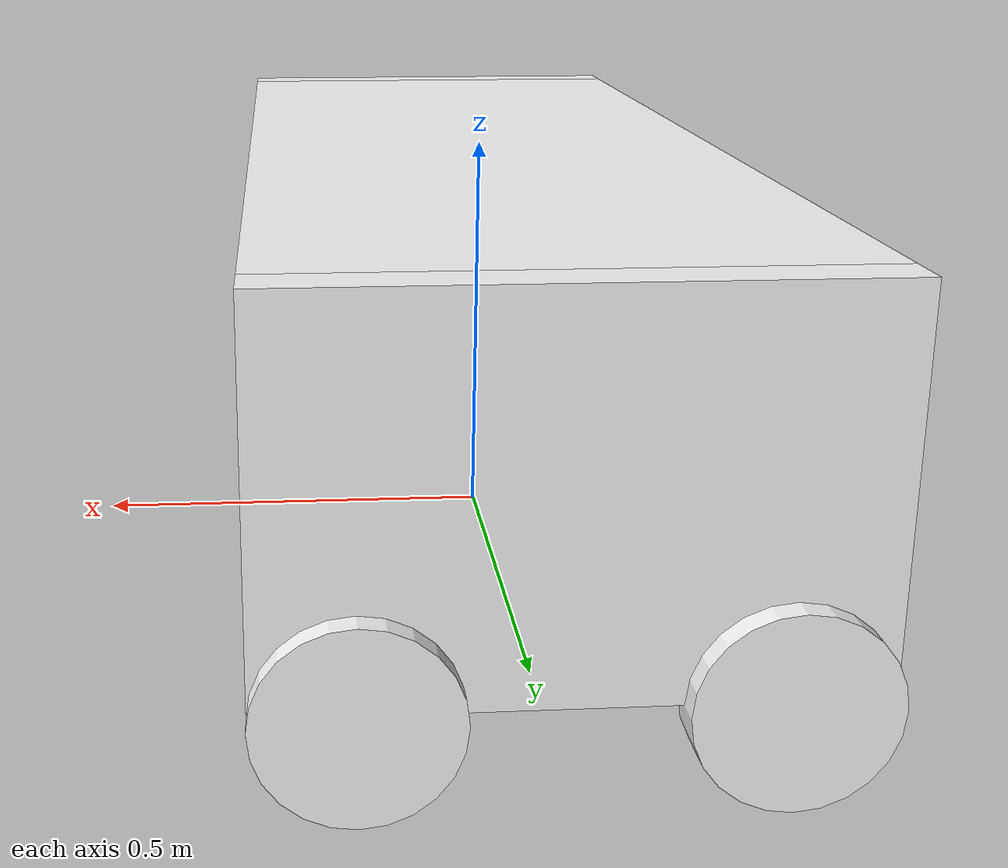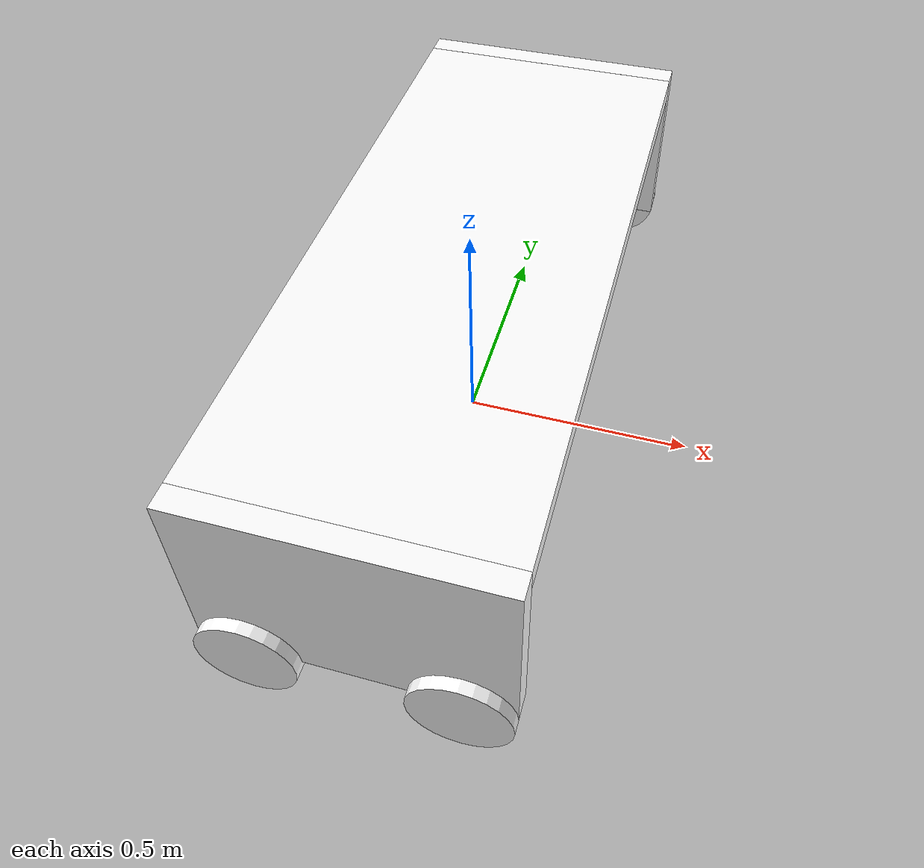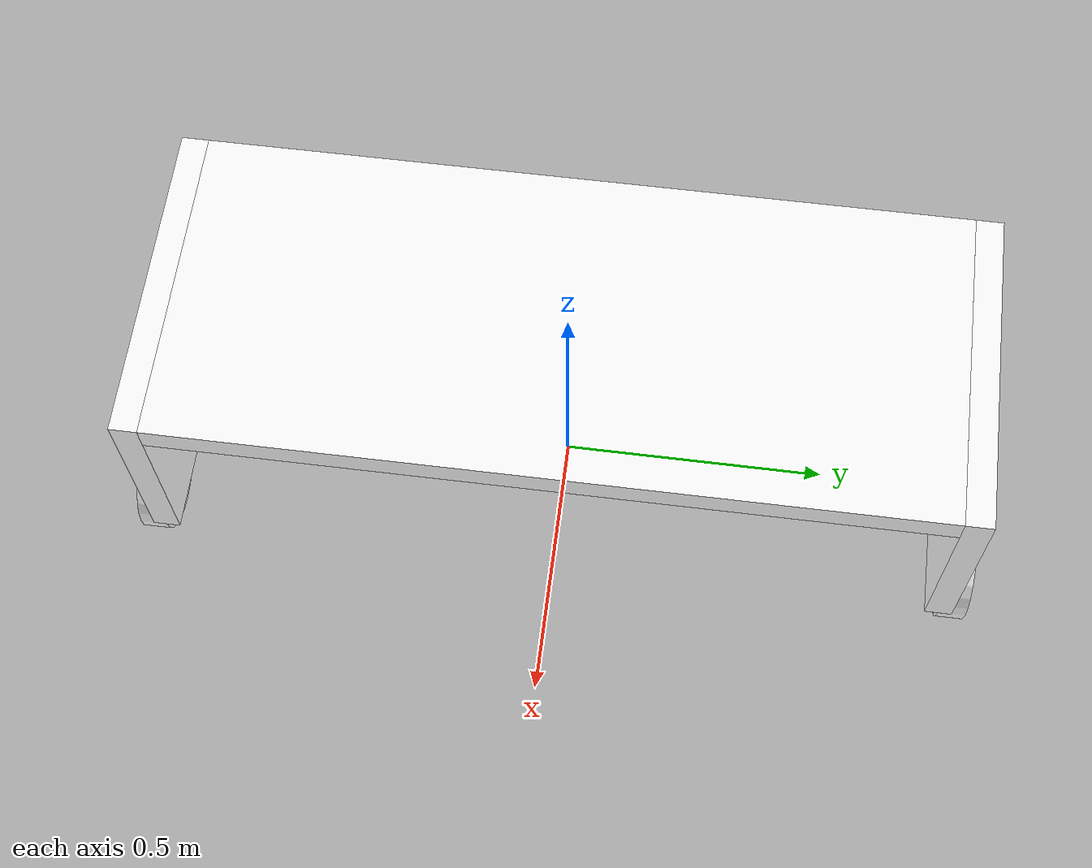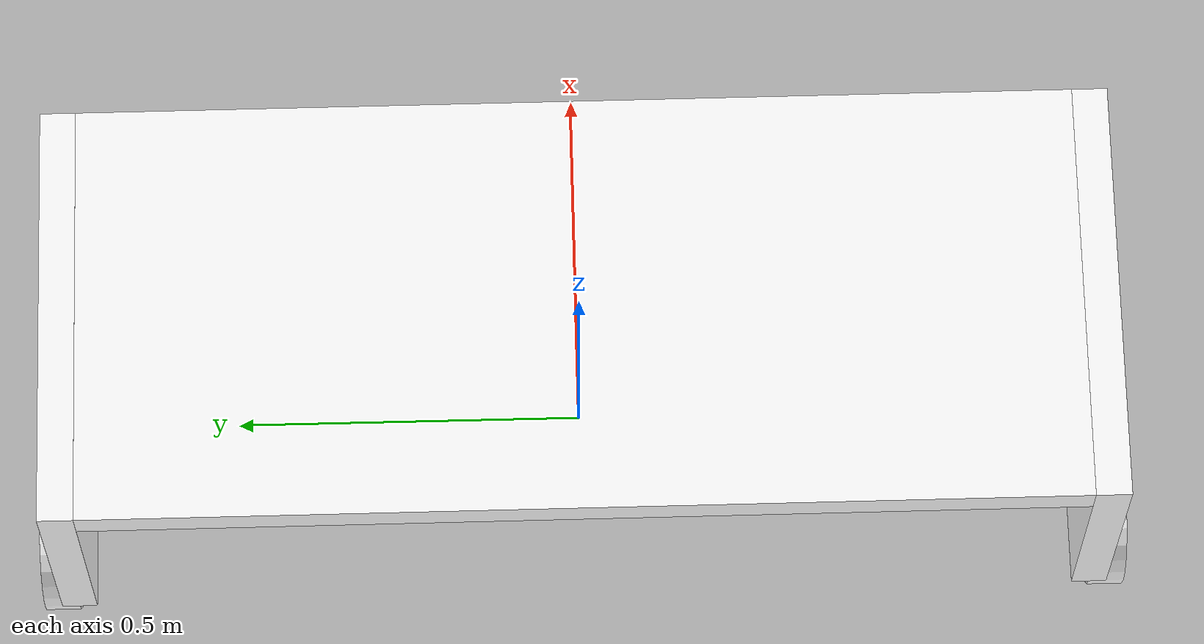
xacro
<?xml version="1.0"?>
<robot xmlns:xacro="http://www.ros.org/wiki/xacro" name="dummy">

    <xacro:include filename="gazebo.xacro"/>

    <material name="white">
        <color rgba="1 1 1 1"/>
    </material>

    <link name="dummy"/>

    <joint type="fixed" name="dummy">
        <parent link="dummy"/>
        <child link="body1"/>
    </joint>

    <link name="body1">
        <visual>
            <geometry>
                <box size="0.6 1.4 0.05"/>
            </geometry>
            <material name="white"/>
            <origin rpy="0 0 0" xyz="0 0 0.475"/>
        </visual>
        <collision>
            <geometry>
                <box size="0.6 1.4 0.05"/>
            </geometry>
            <origin rpy="0 0 0" xyz="0 0 0.475"/>
        </collision>
        <xacro:inertial_box mass="10.5" x="0.6" y="1.4" z="0.05">
            <origin xyz="0 0 0.475" rpy="0 0 0"/>
        </xacro:inertial_box>
    </link>

    <link name="body2">
        <visual>
            <geometry>
                <box size="0.6 0.4 0.05"/>
            </geometry>
            <material name="white"/>
            <origin rpy="0 0 0" xyz="0 0 0"/>
        </visual>
        <collision>
            <geometry>
                <box size="0.6 0.4 0.05"/>
            </geometry>
            <origin rpy="0 0 0" xyz="0 0 0"/>
        </collision>
        <xacro:inertial_box mass="5.5" x="0.6" y="0.4" z="0.05">
            <origin xyz="0 0 0" rpy="0 0 0"/>
        </xacro:inertial_box>
    </link>

    <joint type="fixed" name="body1_2">
        <parent link="body1"/>
        <child link="body2"/>
        <origin xyz="0 0.725 0.3" rpy="1.5707 0 0"/>
    </joint>

    <link name="body3">
        <visual>
            <geometry>
                <box size="0.6 0.4 0.05"/>
            </geometry>
            <material name="white"/>
            <origin rpy="0 0 0" xyz="0 0 0"/>
        </visual>
        <collision>
            <geometry>
                <box size="0.6 0.4 0.05"/>
            </geometry>
            <origin rpy="0 0 0" xyz="0 0 0"/>
        </collision>
        <xacro:inertial_box mass="5.5" x="0.6" y="0.4" z="0.05">
            <origin xyz="0 0 0" rpy="0 0 0"/>
        </xacro:inertial_box>
    </link>

    <joint type="fixed" name="body1_3">
        <parent link="body1"/>
        <child link="body3"/>
        <origin xyz="0 -0.725 0.3" rpy="1.5707 0 0"/>
    </joint>

    <link name="left_wheel_f">
        <visual>
            <geometry>
                <cylinder length="0.05" radius="0.1"/>
            </geometry>
            <material name="white"/>
            <origin xyz="0 0 0" rpy="0 0 0"/>
        </visual>
        <collision>
            <geometry>
                <cylinder length="0.05" radius="0.1"/>
            </geometry>
            <origin xyz="0 0 0" rpy="0 0 0"/>
        </collision>
        <xacro:inertial_cylinder mass="5.5" length="0.05" radius="0.1">
            <origin xyz="0 0 0" rpy="0 0 0"/>
        </xacro:inertial_cylinder>
    </link>

    <link name="right_wheel_f">
        <visual>
            <geometry>
                <cylinder length="0.05" radius="0.1"/>
            </geometry>
            <material name="white"/>
            <origin xyz="0 0 0" rpy="0 0 0"/>
        </visual>
        <collision>
            <geometry>
                <cylinder length="0.05" radius="0.1"/>
            </geometry>
            <origin xyz="0 0 0" rpy="0 0 0"/>
        </collision>
        <xacro:inertial_cylinder mass="5.5" length="0.05" radius="0.1">
            <origin xyz="0 0 0" rpy="0 0 0"/>
        </xacro:inertial_cylinder>
    </link>

    <link name="left_wheel_b">
        <visual>
            <geometry>
                <cylinder length="0.05" radius="0.1"/>
            </geometry>
            <material name="white"/>
            <origin xyz="0 0 0" rpy="0 0 0"/>
        </visual>
        <collision>
            <geometry>
                <cylinder length="0.05" radius="0.1"/>
            </geometry>
            <origin xyz="0 0 0" rpy="0 0 0"/>
        </collision>
        <xacro:inertial_cylinder mass="5.5" length="0.05" radius="0.1">
            <origin xyz="0 0 0" rpy="0 0 0"/>
        </xacro:inertial_cylinder>
    </link>

    <link name="right_wheel_b">
        <visual>
            <geometry>
                <cylinder length="0.05" radius="0.1"/>
            </geometry>
            <material name="white"/>
            <origin xyz="0 0 0" rpy="0 0 0"/>
        </visual>
        <collision>
            <geometry>
                <cylinder length="0.05" radius="0.1"/>
            </geometry>
            <origin xyz="0 0 0" rpy="0 0 0"/>
        </collision>
        <xacro:inertial_cylinder mass="5.5" length="0.05" radius="0.1">
            <origin xyz="0 0 0" rpy="0 0 0"/>
        </xacro:inertial_cylinder>
    </link>

    <joint type="continuous" name="left_joint_f">
        <axis rpy="0 0 0" xyz="0 0 1"/>
        <limit
            effort="10.0"
            lower="-3.14159265359"
            upper="3.14159265359"
            velocity="10.0"
            />
        <parent link="body2"/>
        <child link="left_wheel_f"/>
        <origin xyz="0.2 -0.2 -0.025" rpy="0 0 0"/>
    </joint>

    <joint type="continuous" name="right_joint_f">
        <axis rpy="0 0 0" xyz="0 0 1"/>
        <limit
            effort="10.0"
            lower="-3.14159265359"
            upper="3.14159265359"
            velocity="10.0"
            />
        <parent link="body3"/>
        <child link="right_wheel_f"/>
        <origin xyz="0.2 -0.2 0.025" rpy="0 3.14159 0"/>
    </joint>

    <joint type="continuous" name="left_joint_b">
        <axis rpy="0 0 0" xyz="0 0 1"/>
        <limit
            effort="10.0"
            lower="-3.14159265359"
            upper="3.14159265359"
            velocity="10.0"
            />
        <parent link="body2"/>
        <child link="left_wheel_b"/>
        <origin xyz="-0.2 -0.2 -0.025" rpy="0 0 0"/>
    </joint>

    <joint type="continuous" name="right_joint_b">
        <axis rpy="0 0 0" xyz="0 0 1"/>
        <limit
            effort="10.0"
            lower="-3.14159265359"
            upper="3.14159265359"
            velocity="10.0"
            />
        <parent link="body3"/>
        <child link="right_wheel_b"/>
        <origin xyz="-0.2 -0.2 0.025" rpy="0 3.14159 0"/>
    </joint>

</robot>

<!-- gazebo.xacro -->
<robot xmlns:xacro="http://www.ros.org/wiki/xacro" name="example">

    <xacro:include filename="inertial_macros.xacro"/>

    <ros2_control name="GazeboSystem" type="system">
        <hardware>
            <plugin>gazebo_ros2_control/GazeboSystem</plugin>
        </hardware>
        <joint name="left_joint_b">
            <command_interface name="velocity"/>
            <state_interface name="position">
                <param name="initial_value">0.0</param>
            </state_interface>
            <state_interface name="velocity"/>
            <state_interface name="effort"/>
        </joint>
        <joint name="right_joint_b">
            <command_interface name="velocity"/>
            <state_interface name="position">
                <param name="initial_value">0.0</param>
            </state_interface>
            <state_interface name="velocity"/>
            <state_interface name="effort"/>
        </joint>
        <joint name="left_joint_f">
            <command_interface name="velocity"/>
            <state_interface name="position">
                <param name="initial_value">0.0</param>
            </state_interface>
            <state_interface name="velocity"/>
            <state_interface name="effort"/>
        </joint>
        <joint name="right_joint_f">
            <command_interface name="velocity"/>
            <state_interface name="position">
                <param name="initial_value">0.0</param>
            </state_interface>
            <state_interface name="velocity"/>
            <state_interface name="effort"/>
        </joint>
    </ros2_control>

    <gazebo>
        <plugin filename="libgazebo_ros2_control.so" name="gazebo_ros2_control">
            <robot_sim_type>gazebo_ros2_control/GazeboSystem</robot_sim_type>
            <parameters>$(find lidar_description)/config/example_controllers.yaml</parameters>
        </plugin>
    </gazebo>

    <gazebo reference="dummy">
        <sensor type="ray" name="lidar_sensor">
            <pose>0 0 0.45 0 1.5707 0</pose>
            <visualize>true</visualize>
            <update_rate>10</update_rate>
            <ray>
                <scan>
                    <horizontal>
                        <sample>720</sample>
                        <resolution>1.125</resolution>
                        <min_angle>0</min_angle>
                        <max_angle>6.28318530718 </max_angle>
                    </horizontal>
                </scan>
                <range>
                    <min>0.05</min>
                    <max>16</max>
                    <resolution>000001</resolution>
                </range>
            </ray>
            <plugin filename="libgazebo_ros_ray_sensor.so" name="lidar">
                <output_type>sensor_msgs/LaserScan</output_type>
            </plugin>
        </sensor>
        <mu1>0.2</mu1>
        <mu2>0.2</mu2>
        <material>Gazebo/Green</material>
    </gazebo>

    <gazebo reference="body1">
        <mu1>0.2</mu1>
        <mu2>0.2</mu2>
        <material>Gazebo/Green</material>
    </gazebo>

    <gazebo reference="body2">
        <mu1>0.2</mu1>
        <mu2>0.2</mu2>
        <material>Gazebo/Green</material>
    </gazebo>

    <gazebo reference="body3">
        <mu1>0.2</mu1>
        <mu2>0.2</mu2>
        <material>Gazebo/Green</material>
    </gazebo>

    <gazebo reference="left_wheel_f">
        <mu1>0.85</mu1>
        <mu2>0.65</mu2>
        <material>Gazebo/Red</material>
    </gazebo>

    <gazebo reference="left_wheel_b">
        <mu1>0.85</mu1>
        <mu2>0.65</mu2>
        <material>Gazebo/Red</material>
    </gazebo>

    <gazebo reference="right_wheel_f">
        <mu1>0.85</mu1>
        <mu2>0.65</mu2>
        <material>Gazebo/Blue</material>
    </gazebo>

    <gazebo reference="right_wheel_b">
        <mu1>0.85</mu1>
        <mu2>0.65</mu2>
        <material>Gazebo/Blue</material>
    </gazebo>

</robot>

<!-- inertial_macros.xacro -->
<robot xmlns:xacro="http://www.ros.org/wiki/xacro" >

    <!-- Specify some standard inertial calculations https://en.wikipedia.org/wiki/List_of_moments_of_inertia -->
    <!-- These make use of xacro's mathematical functionality -->

    <xacro:macro name="inertial_sphere" params="mass radius *origin">
        <inertial>
            <xacro:insert_block name="origin"/>
            <mass value="${mass}" />
            <inertia ixx="${(2/5) * mass * (radius*radius)}" ixy="0.0" ixz="0.0"
                    iyy="${(2/5) * mass * (radius*radius)}" iyz="0.0"
                    izz="${(2/5) * mass * (radius*radius)}" />
        </inertial>
    </xacro:macro>

    <xacro:macro name="inertial_box" params="mass x y z *origin">
        <inertial>
            <xacro:insert_block name="origin"/>
            <mass value="${mass}" />
            <inertia ixx="${(1/12) * mass * (y*y+z*z)}" ixy="0.0" ixz="0.0"
                    iyy="${(1/12) * mass * (x*x+z*z)}" iyz="0.0"
                    izz="${(1/12) * mass * (x*x+y*y)}" />
        </inertial>
    </xacro:macro>

    <xacro:macro name="inertial_cylinder" params="mass length radius *origin">

        <inertial>
            <xacro:insert_block name="origin"/>
            <mass value="${mass}" />
            <inertia ixx="${(1/12) * mass * (3*radius*radius + length*length)}" ixy="0.0" ixz="0.0"
                    iyy="${(1/12) * mass * (3*radius*radius + length*length)}" iyz="0.0"
                    izz="${(1/2) * mass * (radius*radius)}" />
        </inertial>
    </xacro:macro>

</robot>
